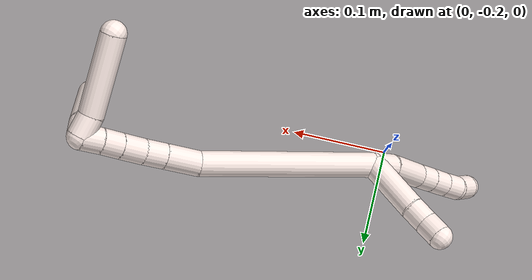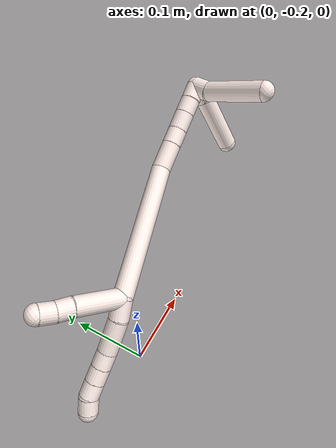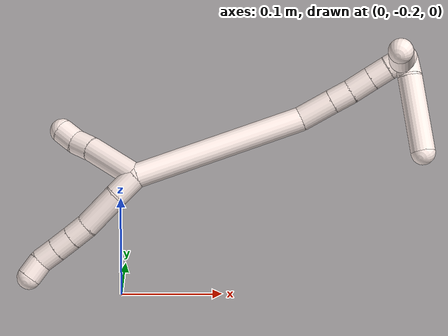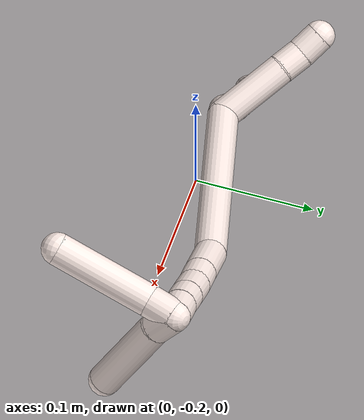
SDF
<sdf version="1.7">
 <world name="default">
  <model name="11">
   <static>0</static>
   <link name="11">
    <collision name="collision-cylinder-e_1_2_8">
     <pose>-0.008499 -0.006688 0.007804 0.708539 -0.690933 -0.264679</pose>
     <geometry><cylinder><radius>0.0125</radius><length>0.026673</length></cylinder></geometry>
     <surface>
      <friction><ode><mu>1.16</mu><mu2>1.16</mu2><slip1>0</slip1><slip2>0</slip2></ode></friction>
      <contact><ode><kp>1e+06</kp><kd>1</kd><max_vel>0</max_vel><min_depth>0.001</min_depth></ode></contact>
     </surface>
    </collision>
    <visual name="visual-cylinder-e_1_2_8">
     <pose>-0.008499 -0.006688 0.007804 0.708539 -0.690933 -0.264679</pose>
     <geometry><cylinder><radius>0.0125</radius><length>0.026673</length></cylinder></geometry>
     <material><ambient>1 0.933333 0.909804 1</ambient></material>
    </visual>
    <collision name="collision-cylinder-e_2_8_9">
     <pose>-0.031827 -0.025951 0.02508 0.925245 -0.755532 -0.390759</pose>
     <geometry><cylinder><radius>0.0125</radius><length>0.043254</length></cylinder></geometry>
     <surface>
      <friction><ode><mu>1.16</mu><mu2>1.16</mu2><slip1>0</slip1><slip2>0</slip2></ode></friction>
      <contact><ode><kp>1e+06</kp><kd>1</kd><max_vel>0</max_vel><min_depth>0.001</min_depth></ode></contact>
     </surface>
    </collision>
    <visual name="visual-cylinder-e_2_8_9">
     <pose>-0.031827 -0.025951 0.02508 0.925245 -0.755532 -0.390759</pose>
     <geometry><cylinder><radius>0.0125</radius><length>0.043254</length></cylinder></geometry>
     <material><ambient>1 0.933333 0.909804 1</ambient></material>
    </visual>
    <collision name="collision-cylinder-e_3_9_10">
     <pose>-0.054301 -0.043266 0.038947 0.823018 -0.868832 -0.39958</pose>
     <geometry><cylinder><radius>0.0125</radius><length>0.020024</length></cylinder></geometry>
     <surface>
      <friction><ode><mu>1.16</mu><mu2>1.16</mu2><slip1>0</slip1><slip2>0</slip2></ode></friction>
      <contact><ode><kp>1e+06</kp><kd>1</kd><max_vel>0</max_vel><min_depth>0.001</min_depth></ode></contact>
     </surface>
    </collision>
    <visual name="visual-cylinder-e_3_9_10">
     <pose>-0.054301 -0.043266 0.038947 0.823018 -0.868832 -0.39958</pose>
     <geometry><cylinder><radius>0.0125</radius><length>0.020024</length></cylinder></geometry>
     <material><ambient>1 0.933333 0.909804 1</ambient></material>
    </visual>
    <collision name="collision-cylinder-e_4_10_11">
     <pose>-0.069669 -0.052642 0.047717 0.814586 -0.880842 -0.40118</pose>
     <geometry><cylinder><radius>0.0125</radius><length>0.020025</length></cylinder></geometry>
     <surface>
      <friction><ode><mu>1.16</mu><mu2>1.16</mu2><slip1>0</slip1><slip2>0</slip2></ode></friction>
      <contact><ode><kp>1e+06</kp><kd>1</kd><max_vel>0</max_vel><min_depth>0.001</min_depth></ode></contact>
     </surface>
    </collision>
    <visual name="visual-cylinder-e_4_10_11">
     <pose>-0.069669 -0.052642 0.047717 0.814586 -0.880842 -0.40118</pose>
     <geometry><cylinder><radius>0.0125</radius><length>0.020025</length></cylinder></geometry>
     <material><ambient>1 0.933333 0.909804 1</ambient></material>
    </visual>
    <collision name="collision-cylinder-e_5_11_12">
     <pose>-0.085152 -0.061695 0.056603 0.774553 -0.887792 -0.383171</pose>
     <geometry><cylinder><radius>0.0125</radius><length>0.020011</length></cylinder></geometry>
     <surface>
      <friction><ode><mu>1.16</mu><mu2>1.16</mu2><slip1>0</slip1><slip2>0</slip2></ode></friction>
      <contact><ode><kp>1e+06</kp><kd>1</kd><max_vel>0</max_vel><min_depth>0.001</min_depth></ode></contact>
     </surface>
    </collision>
    <visual name="visual-cylinder-e_5_11_12">
     <pose>-0.085152 -0.061695 0.056603 0.774553 -0.887792 -0.383171</pose>
     <geometry><cylinder><radius>0.0125</radius><length>0.020011</length></cylinder></geometry>
     <material><ambient>1 0.933333 0.909804 1</ambient></material>
    </visual>
    <collision name="collision-cylinder-e_6_12_6">
     <pose>-0.098078 -0.071766 0.067556 0.720651 -0.542374 -0.208753</pose>
     <geometry><cylinder><radius>0.0125</radius><length>0.020012</length></cylinder></geometry>
     <surface>
      <friction><ode><mu>1.16</mu><mu2>1.16</mu2><slip1>0</slip1><slip2>0</slip2></ode></friction>
      <contact><ode><kp>1e+06</kp><kd>1</kd><max_vel>0</max_vel><min_depth>0.001</min_depth></ode></contact>
     </surface>
    </collision>
    <visual name="visual-cylinder-e_6_12_6">
     <pose>-0.098078 -0.071766 0.067556 0.720651 -0.542374 -0.208753</pose>
     <geometry><cylinder><radius>0.0125</radius><length>0.020012</length></cylinder></geometry>
     <material><ambient>1 0.933333 0.909804 1</ambient></material>
    </visual>
    <collision name="collision-cylinder-e_1_2_13">
     <pose>-0.026261 0.008492 -0.010611 -2.46666 -1.09324 2.0954</pose>
     <geometry><cylinder><radius>0.0125</radius><length>0.059139</length></cylinder></geometry>
     <surface>
      <friction><ode><mu>1.16</mu><mu2>1.16</mu2><slip1>0</slip1><slip2>0</slip2></ode></friction>
      <contact><ode><kp>1e+06</kp><kd>1</kd><max_vel>0</max_vel><min_depth>0.001</min_depth></ode></contact>
     </surface>
    </collision>
    <visual name="visual-cylinder-e_1_2_13">
     <pose>-0.026261 0.008492 -0.010611 -2.46666 -1.09324 2.0954</pose>
     <geometry><cylinder><radius>0.0125</radius><length>0.059139</length></cylinder></geometry>
     <material><ambient>1 0.933333 0.909804 1</ambient></material>
    </visual>
    <collision name="collision-cylinder-e_2_13_14">
     <pose>-0.062002 0.019138 -0.024286 -2.52885 -1.19451 2.27089</pose>
     <geometry><cylinder><radius>0.0125</radius><length>0.020385</length></cylinder></geometry>
     <surface>
      <friction><ode><mu>1.16</mu><mu2>1.16</mu2><slip1>0</slip1><slip2>0</slip2></ode></friction>
      <contact><ode><kp>1e+06</kp><kd>1</kd><max_vel>0</max_vel><min_depth>0.001</min_depth></ode></contact>
     </surface>
    </collision>
    <visual name="visual-cylinder-e_2_13_14">
     <pose>-0.062002 0.019138 -0.024286 -2.52885 -1.19451 2.27089</pose>
     <geometry><cylinder><radius>0.0125</radius><length>0.020385</length></cylinder></geometry>
     <material><ambient>1 0.933333 0.909804 1</ambient></material>
    </visual>
    <collision name="collision-cylinder-e_3_14_5">
     <pose>-0.080076 0.025462 -0.031032 -2.29419 -0.996343 1.75702</pose>
     <geometry><cylinder><radius>0.0125</radius><length>0.020475</length></cylinder></geometry>
     <surface>
      <friction><ode><mu>1.16</mu><mu2>1.16</mu2><slip1>0</slip1><slip2>0</slip2></ode></friction>
      <contact><ode><kp>1e+06</kp><kd>1</kd><max_vel>0</max_vel><min_depth>0.001</min_depth></ode></contact>
     </surface>
    </collision>
    <visual name="visual-cylinder-e_3_14_5">
     <pose>-0.080076 0.025462 -0.031032 -2.29419 -0.996343 1.75702</pose>
     <geometry><cylinder><radius>0.0125</radius><length>0.020475</length></cylinder></geometry>
     <material><ambient>1 0.933333 0.909804 1</ambient></material>
    </visual>
    <collision name="collision-cylinder-e_1_2_15">
     <pose>0.071031 0.003948 -0.053194 -3.06751 0.926692 -2.99351</pose>
     <geometry><cylinder><radius>0.0125</radius><length>0.177657</length></cylinder></geometry>
     <surface>
      <friction><ode><mu>1.16</mu><mu2>1.16</mu2><slip1>0</slip1><slip2>0</slip2></ode></friction>
      <contact><ode><kp>1e+06</kp><kd>1</kd><max_vel>0</max_vel><min_depth>0.001</min_depth></ode></contact>
     </surface>
    </collision>
    <visual name="visual-cylinder-e_1_2_15">
     <pose>0.071031 0.003948 -0.053194 -3.06751 0.926692 -2.99351</pose>
     <geometry><cylinder><radius>0.0125</radius><length>0.177657</length></cylinder></geometry>
     <material><ambient>1 0.933333 0.909804 1</ambient></material>
    </visual>
    <collision name="collision-cylinder-e_2_15_16">
     <pose>0.15703 0.013478 -0.114951 -2.56392 0.971656 -2.11647</pose>
     <geometry><cylinder><radius>0.0125</radius><length>0.036252</length></cylinder></geometry>
     <surface>
      <friction><ode><mu>1.16</mu><mu2>1.16</mu2><slip1>0</slip1><slip2>0</slip2></ode></friction>
      <contact><ode><kp>1e+06</kp><kd>1</kd><max_vel>0</max_vel><min_depth>0.001</min_depth></ode></contact>
     </surface>
    </collision>
    <visual name="visual-cylinder-e_2_15_16">
     <pose>0.15703 0.013478 -0.114951 -2.56392 0.971656 -2.11647</pose>
     <geometry><cylinder><radius>0.0125</radius><length>0.036252</length></cylinder></geometry>
     <material><ambient>1 0.933333 0.909804 1</ambient></material>
    </visual>
    <collision name="collision-cylinder-e_3_16_17">
     <pose>0.181004 0.022243 -0.128671 -2.58857 0.978382 -2.16208</pose>
     <geometry><cylinder><radius>0.0125</radius><length>0.021708</length></cylinder></geometry>
     <surface>
      <friction><ode><mu>1.16</mu><mu2>1.16</mu2><slip1>0</slip1><slip2>0</slip2></ode></friction>
      <contact><ode><kp>1e+06</kp><kd>1</kd><max_vel>0</max_vel><min_depth>0.001</min_depth></ode></contact>
     </surface>
    </collision>
    <visual name="visual-cylinder-e_3_16_17">
     <pose>0.181004 0.022243 -0.128671 -2.58857 0.978382 -2.16208</pose>
     <geometry><cylinder><radius>0.0125</radius><length>0.021708</length></cylinder></geometry>
     <material><ambient>1 0.933333 0.909804 1</ambient></material>
    </visual>
    <collision name="collision-cylinder-e_4_17_18">
     <pose>0.199692 0.029933 -0.139328 -2.45517 0.937465 -1.91249</pose>
     <geometry><cylinder><radius>0.0125</radius><length>0.024028</length></cylinder></geometry>
     <surface>
      <friction><ode><mu>1.16</mu><mu2>1.16</mu2><slip1>0</slip1><slip2>0</slip2></ode></friction>
      <contact><ode><kp>1e+06</kp><kd>1</kd><max_vel>0</max_vel><min_depth>0.001</min_depth></ode></contact>
     </surface>
    </collision>
    <visual name="visual-cylinder-e_4_17_18">
     <pose>0.199692 0.029933 -0.139328 -2.45517 0.937465 -1.91249</pose>
     <geometry><cylinder><radius>0.0125</radius><length>0.024028</length></cylinder></geometry>
     <material><ambient>1 0.933333 0.909804 1</ambient></material>
    </visual>
    <collision name="collision-cylinder-e_5_18_19">
     <pose>0.217539 0.038159 -0.149358 -2.45407 0.94808 -1.9232</pose>
     <geometry><cylinder><radius>0.0125</radius><length>0.020099</length></cylinder></geometry>
     <surface>
      <friction><ode><mu>1.16</mu><mu2>1.16</mu2><slip1>0</slip1><slip2>0</slip2></ode></friction>
      <contact><ode><kp>1e+06</kp><kd>1</kd><max_vel>0</max_vel><min_depth>0.001</min_depth></ode></contact>
     </surface>
    </collision>
    <visual name="visual-cylinder-e_5_18_19">
     <pose>0.217539 0.038159 -0.149358 -2.45407 0.94808 -1.9232</pose>
     <geometry><cylinder><radius>0.0125</radius><length>0.020099</length></cylinder></geometry>
     <material><ambient>1 0.933333 0.909804 1</ambient></material>
    </visual>
    <collision name="collision-cylinder-e_6_19_1">
     <pose>0.233979 0.045091 -0.158761 -2.55883 0.956524 -2.09261</pose>
     <geometry><cylinder><radius>0.0125</radius><length>0.020256</length></cylinder></geometry>
     <surface>
      <friction><ode><mu>1.16</mu><mu2>1.16</mu2><slip1>0</slip1><slip2>0</slip2></ode></friction>
      <contact><ode><kp>1e+06</kp><kd>1</kd><max_vel>0</max_vel><min_depth>0.001</min_depth></ode></contact>
     </surface>
    </collision>
    <visual name="visual-cylinder-e_6_19_1">
     <pose>0.233979 0.045091 -0.158761 -2.55883 0.956524 -2.09261</pose>
     <geometry><cylinder><radius>0.0125</radius><length>0.020256</length></cylinder></geometry>
     <material><ambient>1 0.933333 0.909804 1</ambient></material>
    </visual>
    <collision name="collision-cylinder-e_1_1_20">
     <pose>0.245878 0.041761 -0.155819 0.696948 0.341524 0.125132</pose>
     <geometry><cylinder><radius>0.0125</radius><length>0.021635</length></cylinder></geometry>
     <surface>
      <friction><ode><mu>1.16</mu><mu2>1.16</mu2><slip1>0</slip1><slip2>0</slip2></ode></friction>
      <contact><ode><kp>1e+06</kp><kd>1</kd><max_vel>0</max_vel><min_depth>0.001</min_depth></ode></contact>
     </surface>
    </collision>
    <visual name="visual-cylinder-e_1_1_20">
     <pose>0.245878 0.041761 -0.155819 0.696948 0.341524 0.125132</pose>
     <geometry><cylinder><radius>0.0125</radius><length>0.021635</length></cylinder></geometry>
     <material><ambient>1 0.933333 0.909804 1</ambient></material>
    </visual>
    <collision name="collision-cylinder-e_2_20_4">
     <pose>0.259194 0.006071 -0.123679 0.875357 0.24998 0.117456</pose>
     <geometry><cylinder><radius>0.0125</radius><length>0.078365</length></cylinder></geometry>
     <surface>
      <friction><ode><mu>1.16</mu><mu2>1.16</mu2><slip1>0</slip1><slip2>0</slip2></ode></friction>
      <contact><ode><kp>1e+06</kp><kd>1</kd><max_vel>0</max_vel><min_depth>0.001</min_depth></ode></contact>
     </surface>
    </collision>
    <visual name="visual-cylinder-e_2_20_4">
     <pose>0.259194 0.006071 -0.123679 0.875357 0.24998 0.117456</pose>
     <geometry><cylinder><radius>0.0125</radius><length>0.078365</length></cylinder></geometry>
     <material><ambient>1 0.933333 0.909804 1</ambient></material>
    </visual>
    <collision name="collision-cylinder-e_1_1_21">
     <pose>0.243553 0.052504 -0.153662 -0.398582 0.119372 -0.024137</pose>
     <geometry><cylinder><radius>0.0125</radius><length>0.021799</length></cylinder></geometry>
     <surface>
      <friction><ode><mu>1.16</mu><mu2>1.16</mu2><slip1>0</slip1><slip2>0</slip2></ode></friction>
      <contact><ode><kp>1e+06</kp><kd>1</kd><max_vel>0</max_vel><min_depth>0.001</min_depth></ode></contact>
     </surface>
    </collision>
    <visual name="visual-cylinder-e_1_1_21">
     <pose>0.243553 0.052504 -0.153662 -0.398582 0.119372 -0.024137</pose>
     <geometry><cylinder><radius>0.0125</radius><length>0.021799</length></cylinder></geometry>
     <material><ambient>1 0.933333 0.909804 1</ambient></material>
    </visual>
    <collision name="collision-cylinder-e_2_21_3">
     <pose>0.256181 0.078648 -0.113374 -0.626577 0.293989 -0.095858</pose>
     <geometry><cylinder><radius>0.0125</radius><length>0.078201</length></cylinder></geometry>
     <surface>
      <friction><ode><mu>1.16</mu><mu2>1.16</mu2><slip1>0</slip1><slip2>0</slip2></ode></friction>
      <contact><ode><kp>1e+06</kp><kd>1</kd><max_vel>0</max_vel><min_depth>0.001</min_depth></ode></contact>
     </surface>
    </collision>
    <visual name="visual-cylinder-e_2_21_3">
     <pose>0.256181 0.078648 -0.113374 -0.626577 0.293989 -0.095858</pose>
     <geometry><cylinder><radius>0.0125</radius><length>0.078201</length></cylinder></geometry>
     <material><ambient>1 0.933333 0.909804 1</ambient></material>
    </visual>
    <collision name="collision-sphere-3">
     <pose>0.267512 0.100592 -0.08306 0 -0 0</pose>
     <geometry><sphere><radius>0.0125</radius></sphere></geometry>
     <surface>
      <friction><ode><mu>1.16</mu><mu2>1.16</mu2><slip1>0</slip1><slip2>0</slip2></ode></friction>
      <contact><ode><kp>1e+06</kp><kd>1</kd><max_vel>0</max_vel><min_depth>0.001</min_depth></ode></contact>
     </surface>
    </collision>
    <visual name="visual-sphere-3">
     <pose>0.267512 0.100592 -0.08306 0 -0 0</pose>
     <geometry><sphere><radius>0.0125</radius></sphere></geometry>
     <material><ambient>1 0.933333 0.909804 1</ambient></material>
    </visual>
    <collision name="collision-sphere-21">
     <pose>0.244851 0.056704 -0.143688 0 -0 0</pose>
     <geometry><sphere><radius>0.0125</radius></sphere></geometry>
     <surface>
      <friction><ode><mu>1.16</mu><mu2>1.16</mu2><slip1>0</slip1><slip2>0</slip2></ode></friction>
      <contact><ode><kp>1e+06</kp><kd>1</kd><max_vel>0</max_vel><min_depth>0.001</min_depth></ode></contact>
     </surface>
    </collision>
    <visual name="visual-sphere-21">
     <pose>0.244851 0.056704 -0.143688 0 -0 0</pose>
     <geometry><sphere><radius>0.0125</radius></sphere></geometry>
     <material><ambient>1 0.933333 0.909804 1</ambient></material>
    </visual>
    <collision name="collision-sphere-4">
     <pose>0.268888 -0.023078 -0.099354 0 -0 0</pose>
     <geometry><sphere><radius>0.0125</radius></sphere></geometry>
     <surface>
      <friction><ode><mu>1.16</mu><mu2>1.16</mu2><slip1>0</slip1><slip2>0</slip2></ode></friction>
      <contact><ode><kp>1e+06</kp><kd>1</kd><max_vel>0</max_vel><min_depth>0.001</min_depth></ode></contact>
     </surface>
    </collision>
    <visual name="visual-sphere-4">
     <pose>0.268888 -0.023078 -0.099354 0 -0 0</pose>
     <geometry><sphere><radius>0.0125</radius></sphere></geometry>
     <material><ambient>1 0.933333 0.909804 1</ambient></material>
    </visual>
    <collision name="collision-sphere-20">
     <pose>0.249501 0.035219 -0.148004 0 -0 0</pose>
     <geometry><sphere><radius>0.0125</radius></sphere></geometry>
     <surface>
      <friction><ode><mu>1.16</mu><mu2>1.16</mu2><slip1>0</slip1><slip2>0</slip2></ode></friction>
      <contact><ode><kp>1e+06</kp><kd>1</kd><max_vel>0</max_vel><min_depth>0.001</min_depth></ode></contact>
     </surface>
    </collision>
    <visual name="visual-sphere-20">
     <pose>0.249501 0.035219 -0.148004 0 -0 0</pose>
     <geometry><sphere><radius>0.0125</radius></sphere></geometry>
     <material><ambient>1 0.933333 0.909804 1</ambient></material>
    </visual>
    <collision name="collision-sphere-12">
     <pose>-0.092913 -0.066111 0.061116 0 -0 0</pose>
     <geometry><sphere><radius>0.0125</radius></sphere></geometry>
     <surface>
      <friction><ode><mu>1.16</mu><mu2>1.16</mu2><slip1>0</slip1><slip2>0</slip2></ode></friction>
      <contact><ode><kp>1e+06</kp><kd>1</kd><max_vel>0</max_vel><min_depth>0.001</min_depth></ode></contact>
     </surface>
    </collision>
    <visual name="visual-sphere-12">
     <pose>-0.092913 -0.066111 0.061116 0 -0 0</pose>
     <geometry><sphere><radius>0.0125</radius></sphere></geometry>
     <material><ambient>1 0.933333 0.909804 1</ambient></material>
    </visual>
    <collision name="collision-sphere-11">
     <pose>-0.077391 -0.057278 0.05209 0 -0 0</pose>
     <geometry><sphere><radius>0.0125</radius></sphere></geometry>
     <surface>
      <friction><ode><mu>1.16</mu><mu2>1.16</mu2><slip1>0</slip1><slip2>0</slip2></ode></friction>
      <contact><ode><kp>1e+06</kp><kd>1</kd><max_vel>0</max_vel><min_depth>0.001</min_depth></ode></contact>
     </surface>
    </collision>
    <visual name="visual-sphere-11">
     <pose>-0.077391 -0.057278 0.05209 0 -0 0</pose>
     <geometry><sphere><radius>0.0125</radius></sphere></geometry>
     <material><ambient>1 0.933333 0.909804 1</ambient></material>
    </visual>
    <collision name="collision-sphere-10">
     <pose>-0.061946 -0.048006 0.043344 0 -0 0</pose>
     <geometry><sphere><radius>0.0125</radius></sphere></geometry>
     <surface>
      <friction><ode><mu>1.16</mu><mu2>1.16</mu2><slip1>0</slip1><slip2>0</slip2></ode></friction>
      <contact><ode><kp>1e+06</kp><kd>1</kd><max_vel>0</max_vel><min_depth>0.001</min_depth></ode></contact>
     </surface>
    </collision>
    <visual name="visual-sphere-10">
     <pose>-0.061946 -0.048006 0.043344 0 -0 0</pose>
     <geometry><sphere><radius>0.0125</radius></sphere></geometry>
     <material><ambient>1 0.933333 0.909804 1</ambient></material>
    </visual>
    <collision name="collision-sphere-9">
     <pose>-0.046656 -0.038526 0.034551 0 -0 0</pose>
     <geometry><sphere><radius>0.0125</radius></sphere></geometry>
     <surface>
      <friction><ode><mu>1.16</mu><mu2>1.16</mu2><slip1>0</slip1><slip2>0</slip2></ode></friction>
      <contact><ode><kp>1e+06</kp><kd>1</kd><max_vel>0</max_vel><min_depth>0.001</min_depth></ode></contact>
     </surface>
    </collision>
    <visual name="visual-sphere-9">
     <pose>-0.046656 -0.038526 0.034551 0 -0 0</pose>
     <geometry><sphere><radius>0.0125</radius></sphere></geometry>
     <material><ambient>1 0.933333 0.909804 1</ambient></material>
    </visual>
    <collision name="collision-sphere-2">
     <geometry><sphere><radius>0.0125</radius></sphere></geometry>
     <surface>
      <friction><ode><mu>1.16</mu><mu2>1.16</mu2><slip1>0</slip1><slip2>0</slip2></ode></friction>
      <contact><ode><kp>1e+06</kp><kd>1</kd><max_vel>0</max_vel><min_depth>0.001</min_depth></ode></contact>
     </surface>
    </collision>
    <visual name="visual-sphere-2">
     <geometry><sphere><radius>0.0125</radius></sphere></geometry>
     <material><ambient>1 0.933333 0.909804 1</ambient></material>
    </visual>
    <collision name="collision-sphere-19">
     <pose>0.225702 0.041879 -0.153887 0 -0 0</pose>
     <geometry><sphere><radius>0.0125</radius></sphere></geometry>
     <surface>
      <friction><ode><mu>1.16</mu><mu2>1.16</mu2><slip1>0</slip1><slip2>0</slip2></ode></friction>
      <contact><ode><kp>1e+06</kp><kd>1</kd><max_vel>0</max_vel><min_depth>0.001</min_depth></ode></contact>
     </surface>
    </collision>
    <visual name="visual-sphere-19">
     <pose>0.225702 0.041879 -0.153887 0 -0 0</pose>
     <geometry><sphere><radius>0.0125</radius></sphere></geometry>
     <material><ambient>1 0.933333 0.909804 1</ambient></material>
    </visual>
    <collision name="collision-sphere-8">
     <pose>-0.016998 -0.013376 0.015608 0 -0 0</pose>
     <geometry><sphere><radius>0.0125</radius></sphere></geometry>
     <surface>
      <friction><ode><mu>1.16</mu><mu2>1.16</mu2><slip1>0</slip1><slip2>0</slip2></ode></friction>
      <contact><ode><kp>1e+06</kp><kd>1</kd><max_vel>0</max_vel><min_depth>0.001</min_depth></ode></contact>
     </surface>
    </collision>
    <visual name="visual-sphere-8">
     <pose>-0.016998 -0.013376 0.015608 0 -0 0</pose>
     <geometry><sphere><radius>0.0125</radius></sphere></geometry>
     <material><ambient>1 0.933333 0.909804 1</ambient></material>
    </visual>
    <collision name="collision-sphere-6">
     <pose>-0.103243 -0.077421 0.073995 0 -0 0</pose>
     <geometry><sphere><radius>0.0125</radius></sphere></geometry>
     <surface>
      <friction><ode><mu>1.16</mu><mu2>1.16</mu2><slip1>0</slip1><slip2>0</slip2></ode></friction>
      <contact><ode><kp>1e+06</kp><kd>1</kd><max_vel>0</max_vel><min_depth>0.001</min_depth></ode></contact>
     </surface>
    </collision>
    <visual name="visual-sphere-6">
     <pose>-0.103243 -0.077421 0.073995 0 -0 0</pose>
     <geometry><sphere><radius>0.0125</radius></sphere></geometry>
     <material><ambient>1 0.933333 0.909804 1</ambient></material>
    </visual>
    <collision name="collision-sphere-13">
     <pose>-0.052523 0.016984 -0.021222 0 -0 0</pose>
     <geometry><sphere><radius>0.0125</radius></sphere></geometry>
     <surface>
      <friction><ode><mu>1.16</mu><mu2>1.16</mu2><slip1>0</slip1><slip2>0</slip2></ode></friction>
      <contact><ode><kp>1e+06</kp><kd>1</kd><max_vel>0</max_vel><min_depth>0.001</min_depth></ode></contact>
     </surface>
    </collision>
    <visual name="visual-sphere-13">
     <pose>-0.052523 0.016984 -0.021222 0 -0 0</pose>
     <geometry><sphere><radius>0.0125</radius></sphere></geometry>
     <material><ambient>1 0.933333 0.909804 1</ambient></material>
    </visual>
    <collision name="collision-sphere-14">
     <pose>-0.071482 0.021292 -0.02735 0 -0 0</pose>
     <geometry><sphere><radius>0.0125</radius></sphere></geometry>
     <surface>
      <friction><ode><mu>1.16</mu><mu2>1.16</mu2><slip1>0</slip1><slip2>0</slip2></ode></friction>
      <contact><ode><kp>1e+06</kp><kd>1</kd><max_vel>0</max_vel><min_depth>0.001</min_depth></ode></contact>
     </surface>
    </collision>
    <visual name="visual-sphere-14">
     <pose>-0.071482 0.021292 -0.02735 0 -0 0</pose>
     <geometry><sphere><radius>0.0125</radius></sphere></geometry>
     <material><ambient>1 0.933333 0.909804 1</ambient></material>
    </visual>
    <collision name="collision-sphere-5">
     <pose>-0.088671 0.029632 -0.034714 0 -0 0</pose>
     <geometry><sphere><radius>0.0125</radius></sphere></geometry>
     <surface>
      <friction><ode><mu>1.16</mu><mu2>1.16</mu2><slip1>0</slip1><slip2>0</slip2></ode></friction>
      <contact><ode><kp>1e+06</kp><kd>1</kd><max_vel>0</max_vel><min_depth>0.001</min_depth></ode></contact>
     </surface>
    </collision>
    <visual name="visual-sphere-5">
     <pose>-0.088671 0.029632 -0.034714 0 -0 0</pose>
     <geometry><sphere><radius>0.0125</radius></sphere></geometry>
     <material><ambient>1 0.933333 0.909804 1</ambient></material>
    </visual>
    <collision name="collision-sphere-15">
     <pose>0.142061 0.007896 -0.106387 0 -0 0</pose>
     <geometry><sphere><radius>0.0125</radius></sphere></geometry>
     <surface>
      <friction><ode><mu>1.16</mu><mu2>1.16</mu2><slip1>0</slip1><slip2>0</slip2></ode></friction>
      <contact><ode><kp>1e+06</kp><kd>1</kd><max_vel>0</max_vel><min_depth>0.001</min_depth></ode></contact>
     </surface>
    </collision>
    <visual name="visual-sphere-15">
     <pose>0.142061 0.007896 -0.106387 0 -0 0</pose>
     <geometry><sphere><radius>0.0125</radius></sphere></geometry>
     <material><ambient>1 0.933333 0.909804 1</ambient></material>
    </visual>
    <collision name="collision-sphere-16">
     <pose>0.171999 0.01906 -0.123514 0 -0 0</pose>
     <geometry><sphere><radius>0.0125</radius></sphere></geometry>
     <surface>
      <friction><ode><mu>1.16</mu><mu2>1.16</mu2><slip1>0</slip1><slip2>0</slip2></ode></friction>
      <contact><ode><kp>1e+06</kp><kd>1</kd><max_vel>0</max_vel><min_depth>0.001</min_depth></ode></contact>
     </surface>
    </collision>
    <visual name="visual-sphere-16">
     <pose>0.171999 0.01906 -0.123514 0 -0 0</pose>
     <geometry><sphere><radius>0.0125</radius></sphere></geometry>
     <material><ambient>1 0.933333 0.909804 1</ambient></material>
    </visual>
    <collision name="collision-sphere-17">
     <pose>0.190008 0.025427 -0.133828 0 -0 0</pose>
     <geometry><sphere><radius>0.0125</radius></sphere></geometry>
     <surface>
      <friction><ode><mu>1.16</mu><mu2>1.16</mu2><slip1>0</slip1><slip2>0</slip2></ode></friction>
      <contact><ode><kp>1e+06</kp><kd>1</kd><max_vel>0</max_vel><min_depth>0.001</min_depth></ode></contact>
     </surface>
    </collision>
    <visual name="visual-sphere-17">
     <pose>0.190008 0.025427 -0.133828 0 -0 0</pose>
     <geometry><sphere><radius>0.0125</radius></sphere></geometry>
     <material><ambient>1 0.933333 0.909804 1</ambient></material>
    </visual>
    <collision name="collision-sphere-18">
     <pose>0.209376 0.034439 -0.144828 0 -0 0</pose>
     <geometry><sphere><radius>0.0125</radius></sphere></geometry>
     <surface>
      <friction><ode><mu>1.16</mu><mu2>1.16</mu2><slip1>0</slip1><slip2>0</slip2></ode></friction>
      <contact><ode><kp>1e+06</kp><kd>1</kd><max_vel>0</max_vel><min_depth>0.001</min_depth></ode></contact>
     </surface>
    </collision>
    <visual name="visual-sphere-18">
     <pose>0.209376 0.034439 -0.144828 0 -0 0</pose>
     <geometry><sphere><radius>0.0125</radius></sphere></geometry>
     <material><ambient>1 0.933333 0.909804 1</ambient></material>
    </visual>
    <collision name="collision-sphere-1">
     <pose>0.242255 0.048304 -0.163635 0 -0 0</pose>
     <geometry><sphere><radius>0.0125</radius></sphere></geometry>
     <surface>
      <friction><ode><mu>1.16</mu><mu2>1.16</mu2><slip1>0</slip1><slip2>0</slip2></ode></friction>
      <contact><ode><kp>1e+06</kp><kd>1</kd><max_vel>0</max_vel><min_depth>0.001</min_depth></ode></contact>
     </surface>
    </collision>
    <visual name="visual-sphere-1">
     <pose>0.242255 0.048304 -0.163635 0 -0 0</pose>
     <geometry><sphere><radius>0.0125</radius></sphere></geometry>
     <material><ambient>1 0.933333 0.909804 1</ambient></material>
    </visual>
    <inertial>
     <pose>0.099888 0.011024 -0.063333 0 -0 0</pose>
     <mass>0.75</mass>
     <inertia>
      <ixx>-0.000227</ixx>
      <ixy>0</ixy>
      <ixz>0</ixz>
      <iyy>0.000538</iyy>
      <iyz>0</iyz>
      <izz>-0.000394</izz>
     </inertia>
    </inertial>
   </link>
   <pose>0.013541 -0.172924 0.114844 1.86075 -0.071128 -0.375491</pose>
  </model>
 </world>
</sdf>
